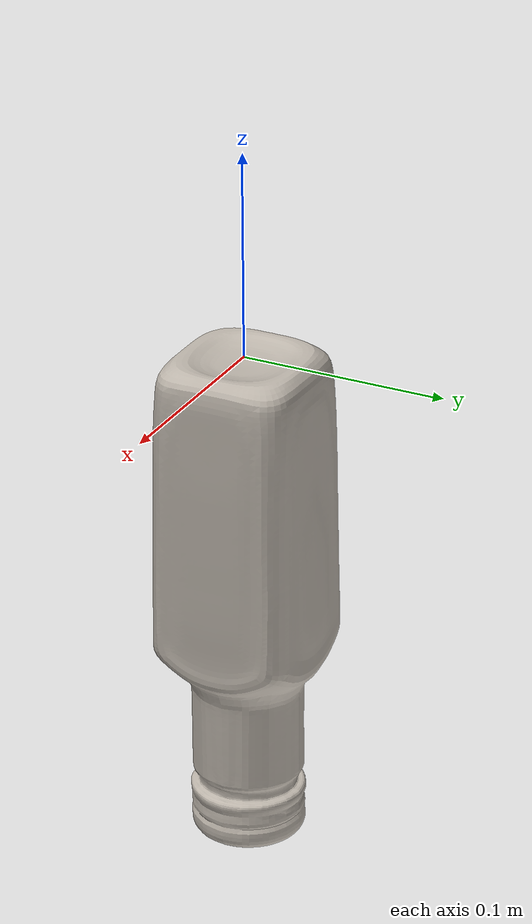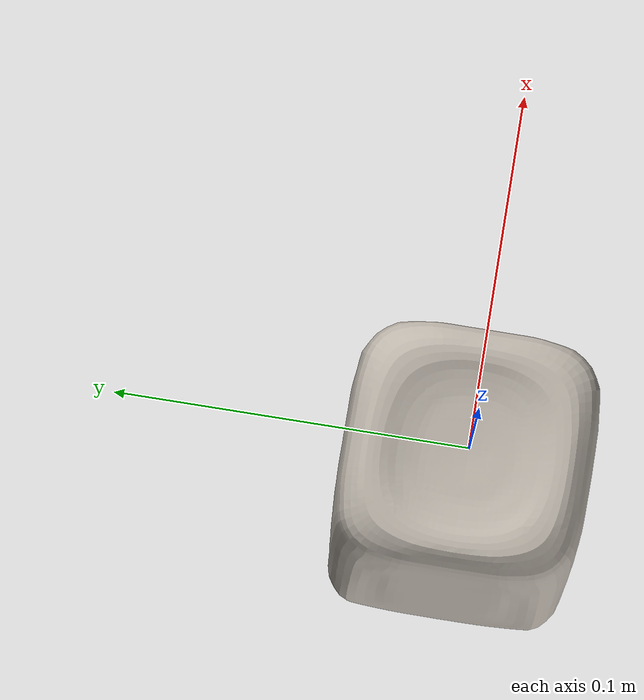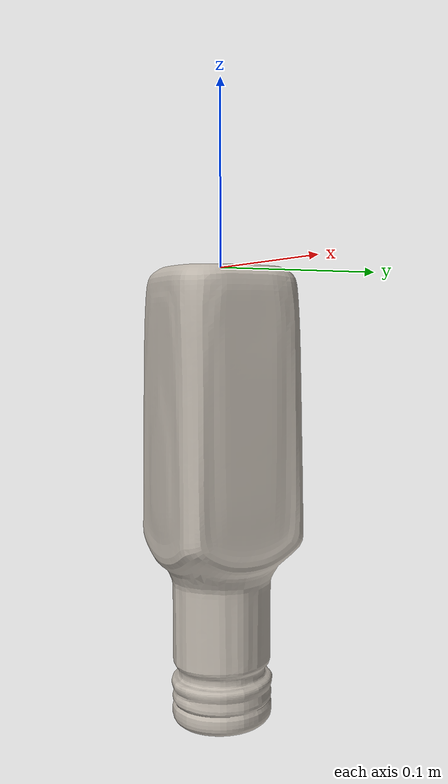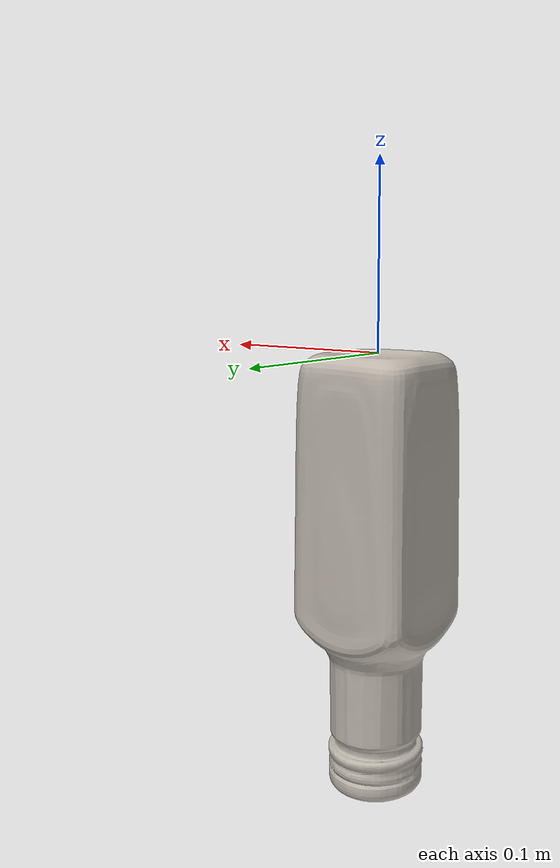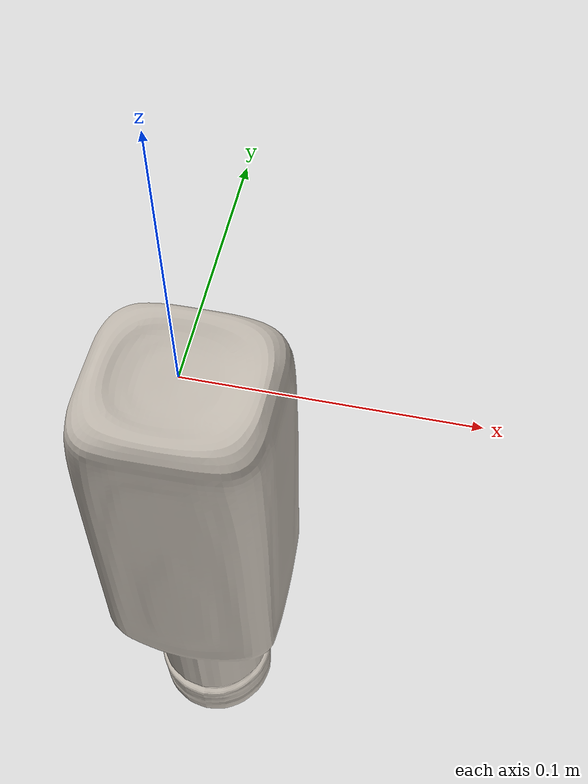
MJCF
<mujoco model="001_bottle">
  <asset>
    <mesh name="001_bottle_visual" file="001_bottle_visual.obj"/>
    <mesh name="001_bottle_collision" file="001_bottle_collision.stl"/>
    <texture name="001_bottle_tex" type="2d" file="001_bottle.png"/>
    <material name="001_bottle_mat" texture="001_bottle_tex"/>
  </asset>
  <worldbody>
    <body name="001_bottle" pos="0 0 0">
      <freejoint/>
      <geom type="mesh" mesh="001_bottle_visual" material="001_bottle_mat"
            mass="0.487" contype="0" conaffinity="0"/>
      <geom type="mesh" mesh="001_bottle_collision" mass="0"
            contype="1" conaffinity="1"
            friction="0.5 .005 0.01"
            rgba="0 0 0 0"/>
    </body>
  </worldbody>
</mujoco>
